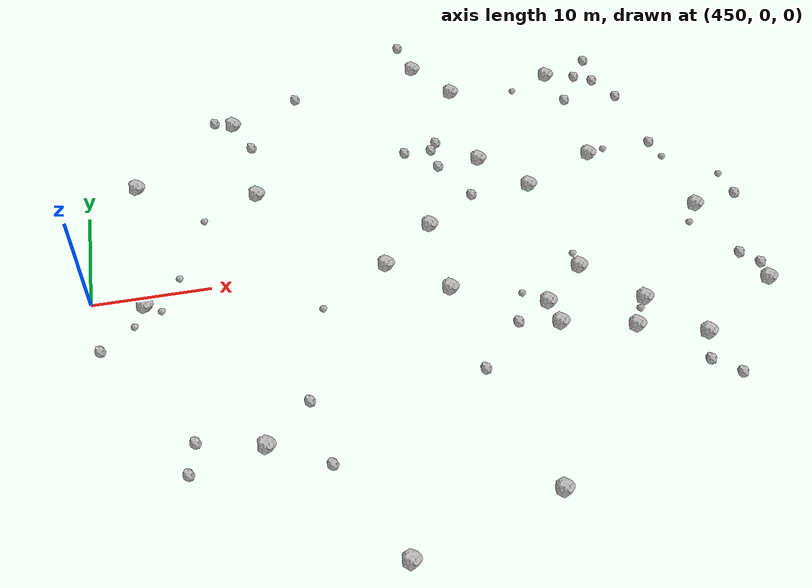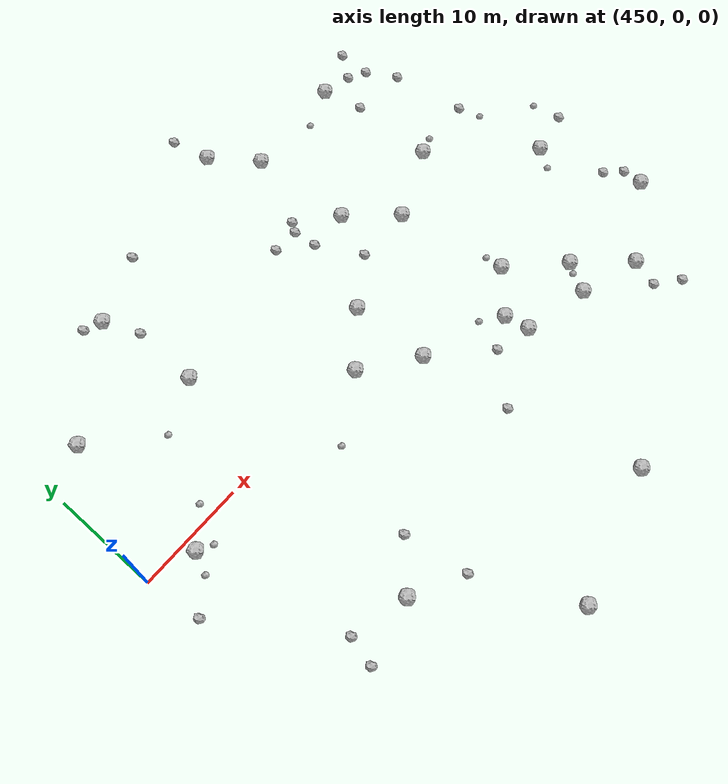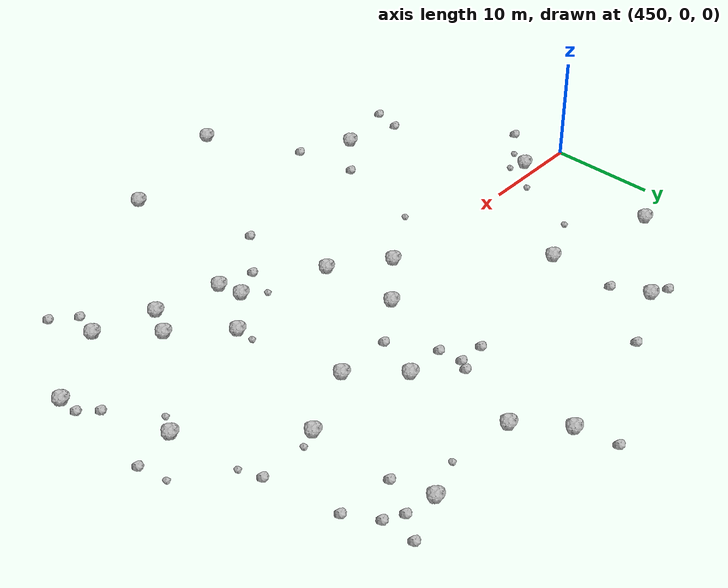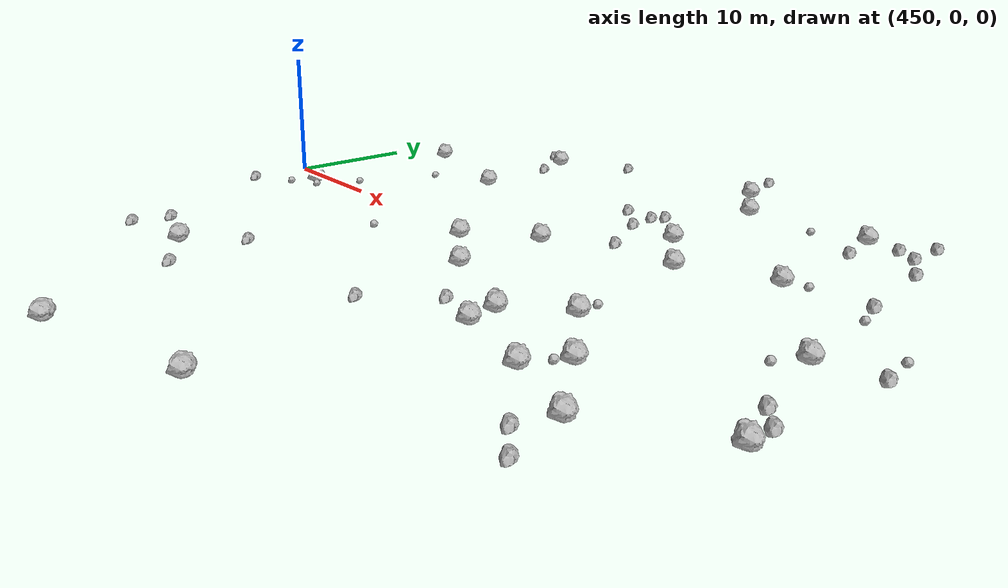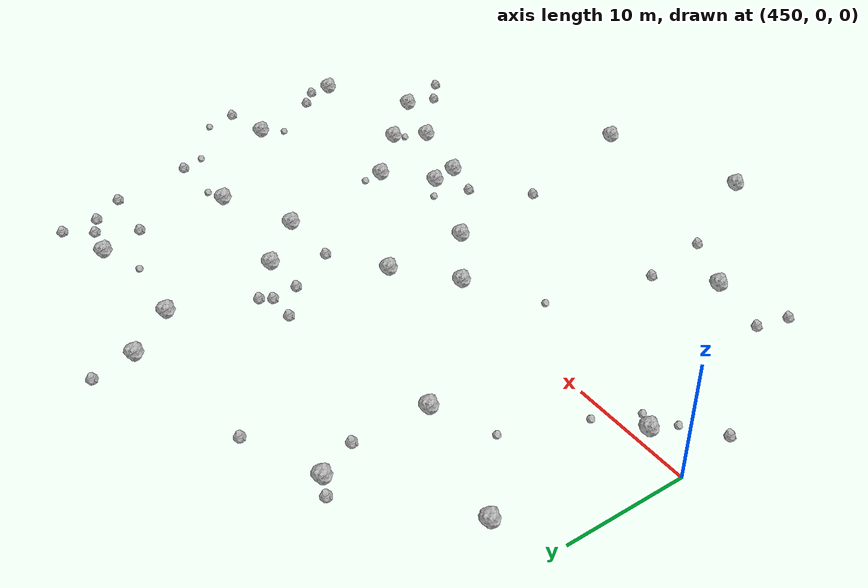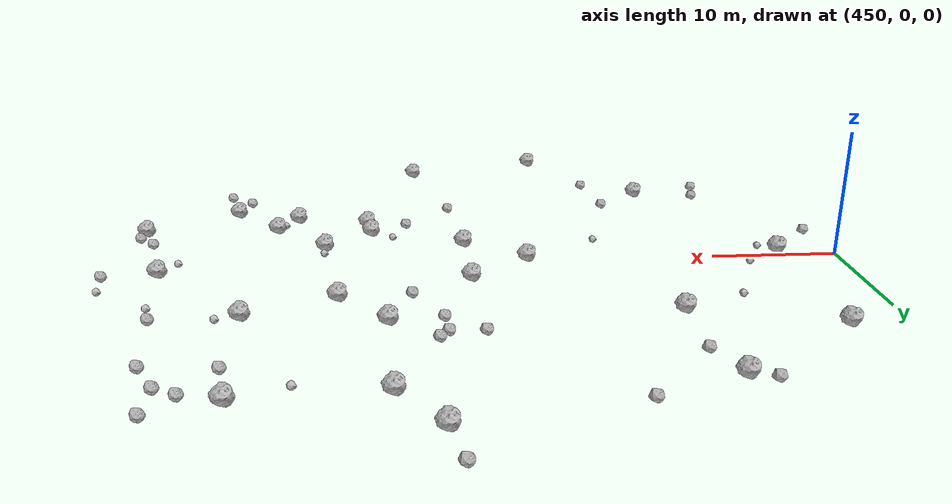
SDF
<sdf version="1.6">
 <world name="default">
  <include><uri>model://sun</uri></include>
  <model name="rock1_12_3">
   <include><uri>model://rock1</uri><pose>499.5607957640998 -12.658962548496405 0.5 0 0 0</pose></include>
  </model>
  <model name="rock1_12_4">
   <include><uri>model://rock1</uri><pose>494.04744776612 -10.870424453573019 0.5 0 0 0</pose></include>
  </model>
  <model name="rock1_12_5">
   <include><uri>model://rock1</uri><pose>495.5278759294972 -8.221858549859693 0.5 0 0 0</pose></include>
  </model>
  <model name="rock1_12_6">
   <include><uri>model://rock1</uri><pose>495.694766960259 9.369306017447713 0.5 0 0 0</pose></include>
  </model>
  <model name="rock1_12_7">
   <include><uri>model://rock1</uri><pose>454.4566657178007 -1.1849729123741213 0.5 0 0 0</pose></include>
  </model>
  <model name="rock1_12_8">
   <include><uri>model://rock1</uri><pose>464.882429159741 9.888771118718125 0.5 0 0 0</pose></include>
  </model>
  <model name="rock1_12_9">
   <include><uri>model://rock1</uri><pose>479.4729192053762 3.3059796515925655 0.5 0 0 0</pose></include>
  </model>
  <model name="rock1_12_10">
   <include><uri>model://rock1</uri><pose>484.85498622933335 20.183863825402938 0.5 0 0 0</pose></include>
  </model>
  <model name="rock1_12_11">
   <include><uri>model://rock1</uri><pose>462.9618097326217 -16.686920900322875 0.5 0 0 0</pose></include>
  </model>
  <model name="rock1_12_12">
   <include><uri>model://rock1</uri><pose>481.8030169963043 24.292215998597086 0.5 0 0 0</pose></include>
  </model>
  <model name="rock1_12_13">
   <include><uri>model://rock1</uri><pose>463.59486793293934 19.46399643813436 0.5 0 0 0</pose></include>
  </model>
  <model name="rock1_12_14">
   <include><uri>model://rock1</uri><pose>487.5057367232594 -7.109651000715051 0.5 0 0 0</pose></include>
  </model>
  <model name="rock1_12_15">
   <include><uri>model://rock1</uri><pose>479.808229611826 -4.110075174378455 0.5 0 0 0</pose></include>
  </model>
  <model name="rock1_12_16">
   <include><uri>model://rock1</uri><pose>503.2850081813591 1.2612274469266467 0.5 0 0 0</pose></include>
  </model>
  <model name="rock1_12_17">
   <include><uri>model://rock1</uri><pose>472.0035932690812 -28.074618566065315 0.5 0 0 0</pose></include>
  </model>
  <model name="rock1_12_18">
   <include><uri>model://rock1</uri><pose>485.49908327767224 10.613227807275472 0.5 0 0 0</pose></include>
  </model>
  <model name="rock1_12_19">
   <include><uri>model://rock1</uri><pose>474.90682955665295 -0.5119289382630434 0.5 0 0 0</pose></include>
  </model>
  <model name="rock1_12_20">
   <include><uri>model://rock1</uri><pose>506.53120448193374 -8.107547213345757 0.5 0 0 0</pose></include>
  </model>
  <model name="rock1_12_21">
   <include><uri>model://rock1</uri><pose>494.62145419575523 20.90315964721428 0.5 0 0 0</pose></include>
  </model>
  <model name="rock1_12_22">
   <include><uri>model://rock1</uri><pose>491.09692613436584 -3.8167084524809987 0.5 0 0 0</pose></include>
  </model>
  <model name="rock1_12_23">
   <include><uri>model://rock1</uri><pose>489.25360747583466 6.464133370497137 0.5 0 0 0</pose></include>
  </model>
  <model name="rock1_12_24">
   <include><uri>model://rock1</uri><pose>484.12455831048214 -24.533134122112426 0.5 0 0 0</pose></include>
  </model>
  <model name="rock1_12_25">
   <include><uri>model://rock1</uri><pose>487.96203842048504 -9.41151363667764 0.5 0 0 0</pose></include>
  </model>
  <model name="rock1_12_26">
   <include><uri>model://rock1</uri><pose>454.30553387909595 12.730737651332085 0.5 0 0 0</pose></include>
  </model>
  <model name="rock2_12_0">
   <include><uri>model://rock2</uri><pose>501.72390790275307 9.966878677597862 0.3 0 0 0</pose></include>
  </model>
  <model name="rock2_12_1">
   <include><uri>model://rock2</uri><pose>480.87311684731554 -12.709866401990922 0.3 0 0 0</pose></include>
  </model>
  <model name="rock2_12_2">
   <include><uri>model://rock2</uri><pose>506.50742065984986 -6.205022545723043 0.3 0 0 0</pose></include>
  </model>
  <model name="rock2_12_3">
   <include><uri>model://rock2</uri><pose>469.78483988316503 22.15648063783756 0.3 0 0 0</pose></include>
  </model>
  <model name="rock2_12_4">
   <include><uri>model://rock2</uri><pose>480.9350519907541 27.97280930660687 0.3 0 0 0</pose></include>
  </model>
  <model name="rock2_12_5">
   <include><uri>model://rock2</uri><pose>481.4024525880672 12.739604384138715 0.3 0 0 0</pose></include>
  </model>
  <model name="rock2_12_6">
   <include><uri>model://rock2</uri><pose>457.66223054028995 -15.322996580083641 0.3 0 0 0</pose></include>
  </model>
  <model name="rock2_12_7">
   <include><uri>model://rock2</uri><pose>456.9823792339824 -18.03572714476168 0.3 0 0 0</pose></include>
  </model>
  <model name="rock2_12_8">
   <include><uri>model://rock2</uri><pose>484.57005317669564 -8.603219068226284 0.3 0 0 0</pose></include>
  </model>
  <model name="rock2_12_9">
   <include><uri>model://rock2</uri><pose>500.5321284319356 16.817059693267076 0.3 0 0 0</pose></include>
  </model>
  <model name="rock2_12_10">
   <include><uri>model://rock2</uri><pose>497.3357113522246 20.38348019974859 0.3 0 0 0</pose></include>
  </model>
  <model name="rock2_12_11">
   <include><uri>model://rock2</uri><pose>500.8633643551275 -16.897760847956363 0.3 0 0 0</pose></include>
  </model>
  <model name="rock2_12_12">
   <include><uri>model://rock2</uri><pose>482.0070150170705 13.639759498957794 0.3 0 0 0</pose></include>
  </model>
  <model name="rock2_12_13">
   <include><uri>model://rock2</uri><pose>450.7138124612592 -5.196014127717142 0.3 0 0 0</pose></include>
  </model>
  <model name="rock2_12_14">
   <include><uri>model://rock2</uri><pose>495.5100950413655 17.217887124141747 0.3 0 0 0</pose></include>
  </model>
  <model name="rock2_12_15">
   <include><uri>model://rock2</uri><pose>498.9154767099807 22.569234842111108 0.3 0 0 0</pose></include>
  </model>
  <model name="rock2_12_16">
   <include><uri>model://rock2</uri><pose>507.2404522493258 2.0973194443428866 0.3 0 0 0</pose></include>
  </model>
  <model name="rock2_12_17">
   <include><uri>model://rock2</uri><pose>478.91199480982885 12.800440958876237 0.3 0 0 0</pose></include>
  </model>
  <model name="rock2_12_18">
   <include><uri>model://rock2</uri><pose>461.87874924334056 20.200816812132643 0.3 0 0 0</pose></include>
  </model>
  <model name="rock2_12_19">
   <include><uri>model://rock2</uri><pose>481.640970274907 10.513544846999324 0.3 0 0 0</pose></include>
  </model>
  <model name="rock2_12_20">
   <include><uri>model://rock2</uri><pose>483.88710544895685 6.3962973530678084 0.3 0 0 0</pose></include>
  </model>
  <model name="rock2_12_21">
   <include><uri>model://rock2</uri><pose>505.1291644798081 -4.79104198438009 0.3 0 0 0</pose></include>
  </model>
  <model name="rock2_12_22">
   <include><uri>model://rock2</uri><pose>466.6873303377603 -13.146871029143984 0.3 0 0 0</pose></include>
  </model>
  <model name="rock2_12_23">
   <include><uri>model://rock2</uri><pose>467.63491850388573 -19.138578827167223 0.3 0 0 0</pose></include>
  </model>
  <model name="rock2_12_24">
   <include><uri>model://rock2</uri><pose>464.9885951891954 16.198339844967307 0.3 0 0 0</pose></include>
  </model>
  <model name="rock2_12_25">
   <include><uri>model://rock2</uri><pose>498.8009578314379 -15.199998969685565 0.3 0 0 0</pose></include>
  </model>
  <model name="rock2_12_26">
   <include><uri>model://rock2</uri><pose>498.94336388084344 19.51012812108185 0.3 0 0 0</pose></include>
  </model>
  <model name="rock3_12_0">
   <include><uri>model://rock3</uri><pose>490.94953848150396 -2.1796576351939088 0.2 0 0 0</pose></include>
  </model>
  <model name="rock3_12_1">
   <include><uri>model://rock3</uri><pose>468.9553574424286 -4.188189684650812 0.2 0 0 0</pose></include>
  </model>
  <model name="rock3_12_2">
   <include><uri>model://rock3</uri><pose>490.8485748925036 19.450290834910327 0.2 0 0 0</pose></include>
  </model>
  <model name="rock3_12_3">
   <include><uri>model://rock3</uri><pose>485.58922240284454 -5.687917276498457 0.2 0 0 0</pose></include>
  </model>
  <model name="rock3_12_4">
   <include><uri>model://rock3</uri><pose>497.24017896691316 9.904754184036179 0.2 0 0 0</pose></include>
  </model>
  <model name="rock3_12_5">
   <include><uri>model://rock3</uri><pose>457.4291510598985 1.364807951457795 0.2 0 0 0</pose></include>
  </model>
  <model name="rock3_12_6">
   <include><uri>model://rock3</uri><pose>502.3390708749189 7.878387734241002 0.2 0 0 0</pose></include>
  </model>
  <model name="rock3_12_7">
   <include><uri>model://rock3</uri><pose>499.46969432658193 -12.548927739265594 0.2 0 0 0</pose></include>
  </model>
  <model name="rock3_12_8">
   <include><uri>model://rock3</uri><pose>459.96066584351627 7.627960363363648 0.2 0 0 0</pose></include>
  </model>
  <model name="rock3_12_9">
   <include><uri>model://rock3</uri><pose>453.49962570079373 -3.1546222841951064 0.2 0 0 0</pose></include>
  </model>
  <model name="rock3_12_10">
   <include><uri>model://rock3</uri><pose>455.76421136479524 -1.9192098870479484 0.2 0 0 0</pose></include>
  </model>
  <model name="rock3_12_11">
   <include><uri>model://rock3</uri><pose>502.08623481448114 -0.5618950093406099 0.2 0 0 0</pose></include>
  </model>
  <model name="rock3_12_12">
   <include><uri>model://rock3</uri><pose>494.85753744723394 -9.108692233778953 0.2 0 0 0</pose></include>
  </model>
  <model name="rock3_12_13">
   <include><uri>model://rock3</uri><pose>506.70160747781676 4.716981745972959 0.2 0 0 0</pose></include>
  </model>
 </world>
</sdf>
